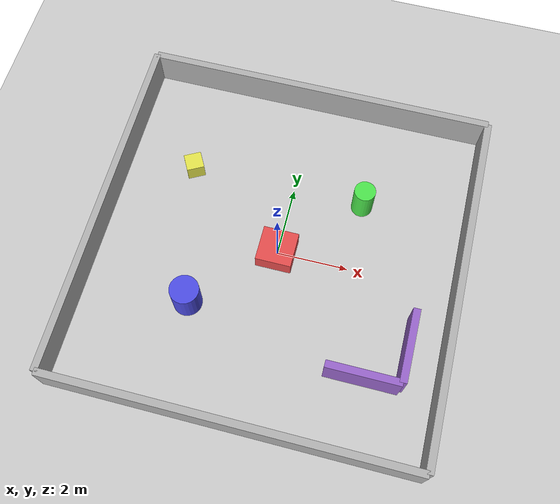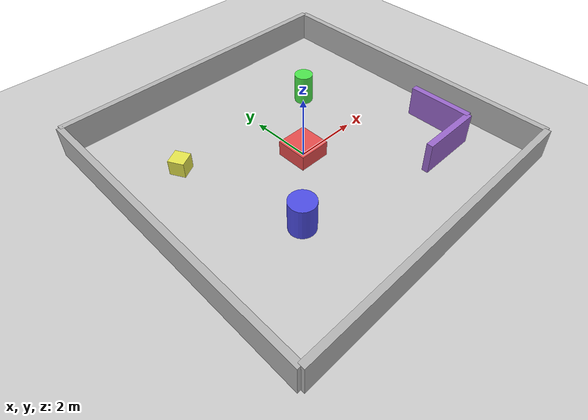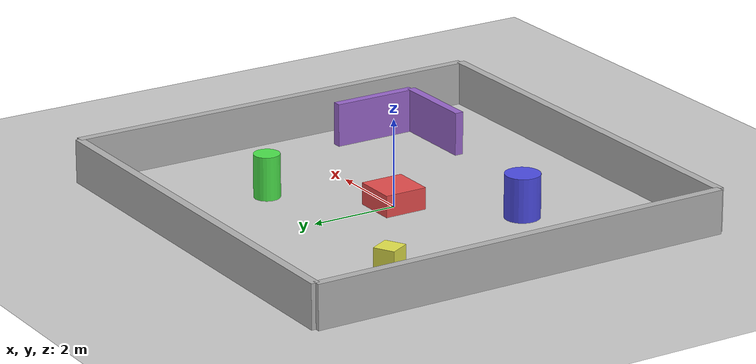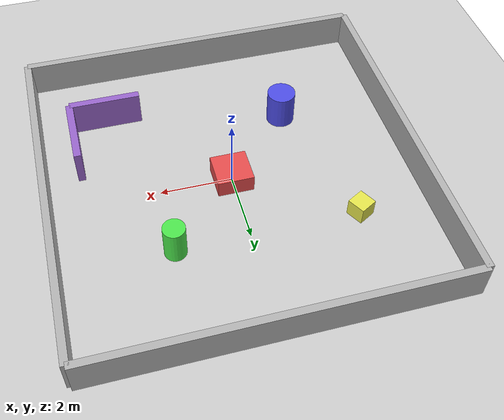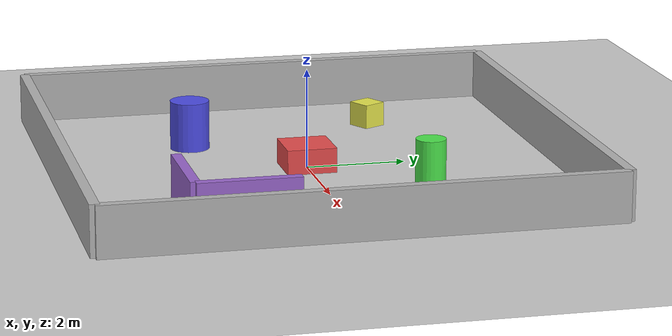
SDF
<?xml version="1.0" ?>
<sdf version="1.6">
  <world name="default">

    <!-- A global light source -->
    <include>
      <uri>model://sun</uri>
    </include>

    <!-- A ground plane -->
    <include>
      <uri>model://ground_plane</uri>
    </include>

    <!-- Physics settings -->
    <physics type="ode">
      <real_time_update_rate>1000.0</real_time_update_rate>
      <max_step_size>0.001</max_step_size>
      <real_time_factor>1</real_time_factor>
      <ode>
        <solver>
          <type>quick</type>
          <iters>150</iters>
          <precon_iters>0</precon_iters>
          <sor>1.400000</sor>
          <use_dynamic_moi_rescaling>1</use_dynamic_moi_rescaling>
        </solver>
        <constraints>
          <cfm>0.00001</cfm>
          <erp>0.2</erp>
          <contact_max_correcting_vel>2000.000000</contact_max_correcting_vel>
          <contact_surface_layer>0.01000</contact_surface_layer>
        </constraints>
      </ode>
    </physics>

    <!-- Scene settings -->
    <scene>
      <ambient>0.4 0.4 0.4 1</ambient>
      <background>0.7 0.7 0.7 1</background>
      <shadows>true</shadows>
    </scene>

    <!-- GUI settings -->
    <gui fullscreen='0'>
      <camera name='user_camera'>
        <pose>5.0 -5.0 2.0 0 0.275643 2.356190</pose>
        <view_controller>orbit</view_controller>
      </camera>
    </gui>

    <!-- Wall 1 - North -->
    <model name='wall_north'>
      <static>true</static>
      <link name='link'>
        <pose>0 5 0.5 0 0 0</pose>
        <collision name='collision'>
          <geometry>
            <box>
              <size>10 0.2 1</size>
            </box>
          </geometry>
        </collision>
        <visual name='visual'>
          <geometry>
            <box>
              <size>10 0.2 1</size>
            </box>
          </geometry>
          <material>
            <ambient>0.5 0.5 0.5 1</ambient>
            <diffuse>0.7 0.7 0.7 1</diffuse>
          </material>
        </visual>
      </link>
    </model>

    <!-- Wall 2 - South -->
    <model name='wall_south'>
      <static>true</static>
      <link name='link'>
        <pose>0 -5 0.5 0 0 0</pose>
        <collision name='collision'>
          <geometry>
            <box>
              <size>10 0.2 1</size>
            </box>
          </geometry>
        </collision>
        <visual name='visual'>
          <geometry>
            <box>
              <size>10 0.2 1</size>
            </box>
          </geometry>
          <material>
            <ambient>0.5 0.5 0.5 1</ambient>
            <diffuse>0.7 0.7 0.7 1</diffuse>
          </material>
        </visual>
      </link>
    </model>

    <!-- Wall 3 - East -->
    <model name='wall_east'>
      <static>true</static>
      <link name='link'>
        <pose>5 0 0.5 0 0 1.5708</pose>
        <collision name='collision'>
          <geometry>
            <box>
              <size>10 0.2 1</size>
            </box>
          </geometry>
        </collision>
        <visual name='visual'>
          <geometry>
            <box>
              <size>10 0.2 1</size>
            </box>
          </geometry>
          <material>
            <ambient>0.5 0.5 0.5 1</ambient>
            <diffuse>0.7 0.7 0.7 1</diffuse>
          </material>
        </visual>
      </link>
    </model>

    <!-- Wall 4 - West -->
    <model name='wall_west'>
      <static>true</static>
      <link name='link'>
        <pose>-5 0 0.5 0 0 1.5708</pose>
        <collision name='collision'>
          <geometry>
            <box>
              <size>10 0.2 1</size>
            </box>
          </geometry>
        </collision>
        <visual name='visual'>
          <geometry>
            <box>
              <size>10 0.2 1</size>
            </box>
          </geometry>
          <material>
            <ambient>0.5 0.5 0.5 1</ambient>
            <diffuse>0.7 0.7 0.7 1</diffuse>
          </material>
        </visual>
      </link>
    </model>

    <!-- Obstacle 1 - Box in center -->
    <model name='obstacle_box_1'>
      <static>true</static>
      <link name='link'>
        <pose>0 0 0.25 0 0 0</pose>
        <collision name='collision'>
          <geometry>
            <box>
              <size>1 1 0.5</size>
            </box>
          </geometry>
        </collision>
        <visual name='visual'>
          <geometry>
            <box>
              <size>1 1 0.5</size>
            </box>
          </geometry>
          <material>
            <ambient>0.8 0.2 0.2 1</ambient>
            <diffuse>0.9 0.3 0.3 1</diffuse>
          </material>
        </visual>
      </link>
    </model>

    <!-- Obstacle 2 - Cylinder -->
    <model name='obstacle_cylinder_1'>
      <static>true</static>
      <link name='link'>
        <pose>2 2 0.5 0 0 0</pose>
        <collision name='collision'>
          <geometry>
            <cylinder>
              <radius>0.3</radius>
              <length>1.0</length>
            </cylinder>
          </geometry>
        </collision>
        <visual name='visual'>
          <geometry>
            <cylinder>
              <radius>0.3</radius>
              <length>1.0</length>
            </cylinder>
          </geometry>
          <material>
            <ambient>0.2 0.8 0.2 1</ambient>
            <diffuse>0.3 0.9 0.3 1</diffuse>
          </material>
        </visual>
      </link>
    </model>

    <!-- Obstacle 3 - Another cylinder -->
    <model name='obstacle_cylinder_2'>
      <static>true</static>
      <link name='link'>
        <pose>-2 -2 0.5 0 0 0</pose>
        <collision name='collision'>
          <geometry>
            <cylinder>
              <radius>0.4</radius>
              <length>1.0</length>
            </cylinder>
          </geometry>
        </collision>
        <visual name='visual'>
          <geometry>
            <cylinder>
              <radius>0.4</radius>
              <length>1.0</length>
            </cylinder>
          </geometry>
          <material>
            <ambient>0.2 0.2 0.8 1</ambient>
            <diffuse>0.3 0.3 0.9 1</diffuse>
          </material>
        </visual>
      </link>
    </model>

    <!-- Obstacle 4 - Small box -->
    <model name='obstacle_box_2'>
      <static>true</static>
      <link name='link'>
        <pose>-3 2 0.25 0 0 0.5</pose>
        <collision name='collision'>
          <geometry>
            <box>
              <size>0.5 0.5 0.5</size>
            </box>
          </geometry>
        </collision>
        <visual name='visual'>
          <geometry>
            <box>
              <size>0.5 0.5 0.5</size>
            </box>
          </geometry>
          <material>
            <ambient>0.8 0.8 0.2 1</ambient>
            <diffuse>0.9 0.9 0.3 1</diffuse>
          </material>
        </visual>
      </link>
    </model>

    <!-- Obstacle 5 - L-shaped wall -->
    <model name='obstacle_l_shape'>
      <static>true</static>
      <link name='link1'>
        <pose>3 -3 0.5 0 0 0</pose>
        <collision name='collision'>
          <geometry>
            <box>
              <size>2 0.2 1</size>
            </box>
          </geometry>
        </collision>
        <visual name='visual'>
          <geometry>
            <box>
              <size>2 0.2 1</size>
            </box>
          </geometry>
          <material>
            <ambient>0.5 0.3 0.7 1</ambient>
            <diffuse>0.6 0.4 0.8 1</diffuse>
          </material>
        </visual>
      </link>
      <link name='link2'>
        <pose>4 -2 0.5 0 0 1.5708</pose>
        <collision name='collision'>
          <geometry>
            <box>
              <size>2 0.2 1</size>
            </box>
          </geometry>
        </collision>
        <visual name='visual'>
          <geometry>
            <box>
              <size>2 0.2 1</size>
            </box>
          </geometry>
          <material>
            <ambient>0.5 0.3 0.7 1</ambient>
            <diffuse>0.6 0.4 0.8 1</diffuse>
          </material>
        </visual>
      </link>
    </model>

  </world>
</sdf>
